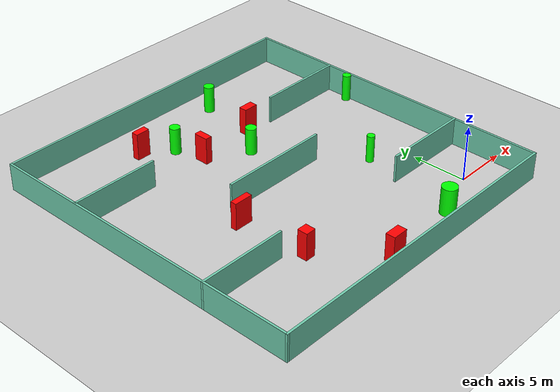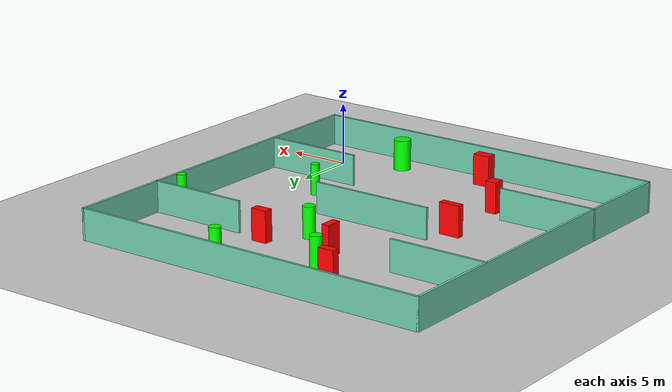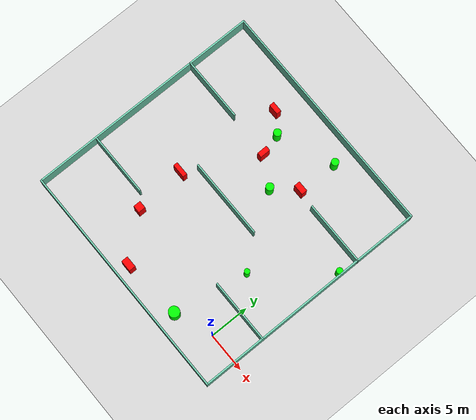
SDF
<sdf version="1.7">
 <world name="default">
  <light name="sun" type="directional">
   <pose>0 0 10 0 -0 0</pose>
   <diffuse>0.8 0.8 0.8 1</diffuse>
   <specular>0.2 0.2 0.2 1</specular>
   <attenuation>
    <range>1000</range>
    <constant>0.9</constant>
    <linear>0.01</linear>
    <quadratic>0.001</quadratic>
   </attenuation>
   <direction>-0.5 0.1 -0.9</direction>
   <spot><inner_angle>0</inner_angle><outer_angle>0</outer_angle><falloff>0</falloff></spot>
  </light>
  <model name="ground_plane">
   <static>1</static>
   <link name="link">
    <collision name="collision">
     <geometry><plane><normal>0 0 1</normal><size>100 100</size></plane></geometry>
     <surface>
      <contact><collide_bitmask>65535</collide_bitmask></contact>
      <friction><ode><mu>100</mu><mu2>50</mu2></ode></friction>
     </surface>
    </collision>
    <visual name="visual">
     <cast_shadows>0</cast_shadows>
     <geometry><plane><normal>0 0 1</normal><size>100 100</size></plane></geometry>
     <material>
      <script><uri>file://media/materials/scripts/gazebo.material</uri><name>Gazebo/Grey</name></script>
     </material>
    </visual>
   </link>
  </model>
  <gravity>0 0 -9.8</gravity>
  <magnetic_field>6e-06 2.3e-05 -4.2e-05</magnetic_field>
  <atmosphere type="adiabatic"/>
  <physics type="ode">
   <max_step_size>0.001</max_step_size>
   <real_time_factor>1</real_time_factor>
   <real_time_update_rate>1000</real_time_update_rate>
  </physics>
  <scene><ambient>0.4 0.4 0.4 1</ambient><background>0.7 0.7 0.7 1</background><shadows>1</shadows></scene>
  <spherical_coordinates>
   <surface_model>EARTH_WGS84</surface_model>
   <latitude_deg>0</latitude_deg>
   <longitude_deg>0</longitude_deg>
   <elevation>0</elevation>
   <heading_deg>0</heading_deg>
  </spherical_coordinates>
  <model name="my_base_walls">
   <link name="Wall_10">
    <collision name="Wall_10_Collision">
     <geometry><box><size>8.2 0.2 2.5</size></box></geometry>
     <pose>0 0 1.25 0 -0 0</pose>
    </collision>
    <visual name="Wall_10_Visual">
     <pose>0 0 1.25 0 -0 0</pose>
     <geometry><box><size>8.2 0.2 2.5</size></box></geometry>
     <material>
      <script><uri>file://media/materials/scripts/gazebo.material</uri><name>Gazebo/Grey</name></script>
      <ambient>0.435294 0.796078 0.67451 1</ambient>
     </material>
     <meta><layer>0</layer></meta>
    </visual>
    <pose>-11 -7 0 0 -0 0</pose>
   </link>
   <link name="Wall_12">
    <collision name="Wall_12_Collision">
     <geometry><box><size>8.2 0.2 2.5</size></box></geometry>
     <pose>0 0 1.25 0 -0 0</pose>
    </collision>
    <visual name="Wall_12_Visual">
     <pose>0 0 1.25 0 -0 0</pose>
     <geometry><box><size>8.2 0.2 2.5</size></box></geometry>
     <material>
      <script><uri>file://media/materials/scripts/gazebo.material</uri><name>Gazebo/Grey</name></script>
      <ambient>0.435294 0.796078 0.67451 1</ambient>
     </material>
     <meta><layer>0</layer></meta>
    </visual>
    <pose>-11 7 0 0 -0 0</pose>
   </link>
   <link name="Wall_14">
    <collision name="Wall_14_Collision">
     <geometry><box><size>8.2 0.2 2.5</size></box></geometry>
     <pose>0 0 1.25 0 -0 0</pose>
    </collision>
    <visual name="Wall_14_Visual">
     <pose>0 0 1.25 0 -0 0</pose>
     <geometry><box><size>8.2 0.2 2.5</size></box></geometry>
     <material>
      <script><uri>file://media/materials/scripts/gazebo.material</uri><name>Gazebo/Grey</name></script>
      <ambient>0.435294 0.796078 0.67451 1</ambient>
     </material>
     <meta><layer>0</layer></meta>
    </visual>
    <pose>11 7 0 0 -0 3.14159</pose>
   </link>
   <link name="Wall_16">
    <collision name="Wall_16_Collision">
     <geometry><box><size>10.2 0.2 2.5</size></box></geometry>
     <pose>0 0 1.25 0 -0 0</pose>
    </collision>
    <visual name="Wall_16_Visual">
     <pose>0 0 1.25 0 -0 0</pose>
     <geometry><box><size>10.2 0.2 2.5</size></box></geometry>
     <material>
      <script><uri>file://media/materials/scripts/gazebo.material</uri><name>Gazebo/Grey</name></script>
      <ambient>0.435294 0.796078 0.67451 1</ambient>
     </material>
     <meta><layer>0</layer></meta>
    </visual>
    <pose>0 0 0 0 -0 3.14159</pose>
   </link>
   <link name="Wall_2">
    <collision name="Wall_2_Collision">
     <geometry><box><size>30.2 0.2 2.5</size></box></geometry>
     <pose>0 0 1.25 0 -0 0</pose>
    </collision>
    <visual name="Wall_2_Visual">
     <pose>0 0 1.25 0 -0 0</pose>
     <geometry><box><size>30.2 0.2 2.5</size></box></geometry>
     <material>
      <script><uri>file://media/materials/scripts/gazebo.material</uri><name>Gazebo/Grey</name></script>
      <ambient>0.435294 0.796078 0.67451 1</ambient>
     </material>
     <meta><layer>0</layer></meta>
    </visual>
    <pose>0 -15 0 0 -0 3.14159</pose>
   </link>
   <link name="Wall_3">
    <collision name="Wall_3_Collision">
     <geometry><box><size>30.2 0.2 2.5</size></box></geometry>
     <pose>0 0 1.25 0 -0 0</pose>
    </collision>
    <visual name="Wall_3_Visual">
     <pose>0 0 1.25 0 -0 0</pose>
     <geometry><box><size>30.2 0.2 2.5</size></box></geometry>
     <material>
      <script><uri>file://media/materials/scripts/gazebo.material</uri><name>Gazebo/Grey</name></script>
      <ambient>0.435294 0.796078 0.67451 1</ambient>
     </material>
     <meta><layer>0</layer></meta>
    </visual>
    <pose>-15 0 0 0 -0 1.5708</pose>
   </link>
   <link name="Wall_4">
    <collision name="Wall_4_Collision">
     <geometry><box><size>30.2 0.2 2.5</size></box></geometry>
     <pose>0 0 1.25 0 -0 0</pose>
    </collision>
    <visual name="Wall_4_Visual">
     <pose>0 0 1.25 0 -0 0</pose>
     <geometry><box><size>30.2 0.2 2.5</size></box></geometry>
     <material>
      <script><uri>file://media/materials/scripts/gazebo.material</uri><name>Gazebo/Grey</name></script>
      <ambient>0.435294 0.796078 0.67451 1</ambient>
     </material>
     <meta><layer>0</layer></meta>
    </visual>
    <pose>0 15 0 0 -0 0</pose>
   </link>
   <link name="Wall_6">
    <collision name="Wall_6_Collision">
     <geometry><box><size>30.2 0.2 2.5</size></box></geometry>
     <pose>0 0 1.25 0 -0 0</pose>
    </collision>
    <visual name="Wall_6_Visual">
     <pose>0 0 1.25 0 -0 0</pose>
     <geometry><box><size>30.2 0.2 2.5</size></box></geometry>
     <material>
      <script><uri>file://media/materials/scripts/gazebo.material</uri><name>Gazebo/Grey</name></script>
      <ambient>0.435294 0.796078 0.67451 1</ambient>
     </material>
     <meta><layer>0</layer></meta>
    </visual>
    <pose>15 0 0 0 -0 1.5708</pose>
   </link>
   <link name="Wall_8">
    <collision name="Wall_8_Collision">
     <geometry><box><size>8.2 0.2 2.5</size></box></geometry>
     <pose>0 0 1.25 0 -0 0</pose>
    </collision>
    <visual name="Wall_8_Visual">
     <pose>0 0 1.25 0 -0 0</pose>
     <geometry><box><size>8.2 0.2 2.5</size></box></geometry>
     <material>
      <script><uri>file://media/materials/scripts/gazebo.material</uri><name>Gazebo/Grey</name></script>
      <ambient>0.435294 0.796078 0.67451 1</ambient>
     </material>
     <meta><layer>0</layer></meta>
    </visual>
    <pose>11 -7 0 0 -0 3.14159</pose>
   </link>
   <static>1</static>
   <pose>-11 11 0 0 -0 0</pose>
  </model>
  <model name="cylinder1">
   <static>1</static>
   <link name="link">
    <inertial>
     <mass>1</mass>
     <inertia><ixx>0.5</ixx><ixy>0</ixy><ixz>0</ixz><iyy>0.5</iyy><iyz>0</iyz><izz>1</izz></inertia>
    </inertial>
    <collision name="collision">
     <geometry><cylinder><radius>0.3811608635186579</radius><length>2.5</length></cylinder></geometry>
    </collision>
    <visual name="visual">
     <geometry><cylinder><radius>0.3811608635186579</radius><length>2.5</length></cylinder></geometry>
     <material>
      <ambient>0 1 0 1</ambient>
      <diffuse>0 1 0 1</diffuse>
      <specular>0.1 0.1 0.1 1</specular>
      <emissive>0 0 0 0</emissive>
     </material>
    </visual>
   </link>
   <pose>3.6194057923205776 15.639685625236538 1.25 0 0 0</pose>
  </model>
  <model name="cylinder2">
   <static>1</static>
   <link name="link">
    <inertial>
     <mass>1</mass>
     <inertia><ixx>0.5</ixx><ixy>0</ixy><ixz>0</ixz><iyy>0.5</iyy><iyz>0</iyz><izz>1</izz></inertia>
    </inertial>
    <collision name="collision">
     <geometry><cylinder><radius>0.46279526559393147</radius><length>2.5</length></cylinder></geometry>
    </collision>
    <visual name="visual">
     <geometry><cylinder><radius>0.46279526559393147</radius><length>2.5</length></cylinder></geometry>
     <material>
      <ambient>0 1 0 1</ambient>
      <diffuse>0 1 0 1</diffuse>
      <specular>0.1 0.1 0.1 1</specular>
      <emissive>0 0 0 0</emissive>
     </material>
    </visual>
   </link>
   <pose>-6.320180080936369 23.378867488034246 1.25 0 0 0</pose>
  </model>
  <model name="cylinder3">
   <static>1</static>
   <link name="link">
    <inertial>
     <mass>1</mass>
     <inertia><ixx>0.5</ixx><ixy>0</ixy><ixz>0</ixz><iyy>0.5</iyy><iyz>0</iyz><izz>1</izz></inertia>
    </inertial>
    <collision name="collision">
     <geometry><cylinder><radius>0.6869386106272591</radius><length>2.5</length></cylinder></geometry>
    </collision>
    <visual name="visual">
     <geometry><cylinder><radius>0.6869386106272591</radius><length>2.5</length></cylinder></geometry>
     <material>
      <ambient>0 1 0 1</ambient>
      <diffuse>0 1 0 1</diffuse>
      <specular>0.1 0.1 0.1 1</specular>
      <emissive>0 0 0 0</emissive>
     </material>
    </visual>
   </link>
   <pose>-4.636175004913104 -1.7599085697837853 1.25 0 0 0</pose>
  </model>
  <model name="cylinder4">
   <static>1</static>
   <link name="link">
    <inertial>
     <mass>1</mass>
     <inertia><ixx>0.5</ixx><ixy>0</ixy><ixz>0</ixz><iyy>0.5</iyy><iyz>0</iyz><izz>1</izz></inertia>
    </inertial>
    <collision name="collision">
     <geometry><cylinder><radius>0.34476868360878576</radius><length>2.5</length></cylinder></geometry>
    </collision>
    <visual name="visual">
     <geometry><cylinder><radius>0.34476868360878576</radius><length>2.5</length></cylinder></geometry>
     <material>
      <ambient>0 1 0 1</ambient>
      <diffuse>0 1 0 1</diffuse>
      <specular>0.1 0.1 0.1 1</specular>
      <emissive>0 0 0 0</emissive>
     </material>
    </visual>
   </link>
   <pose>-2.9666167628371696 7.5086065634544426 1.25 0 0 0</pose>
  </model>
  <model name="cylinder5">
   <static>1</static>
   <link name="link">
    <inertial>
     <mass>1</mass>
     <inertia><ixx>0.5</ixx><ixy>0</ixy><ixz>0</ixz><iyy>0.5</iyy><iyz>0</iyz><izz>1</izz></inertia>
    </inertial>
    <collision name="collision">
     <geometry><cylinder><radius>0.4941132775165975</radius><length>2.5</length></cylinder></geometry>
    </collision>
    <visual name="visual">
     <geometry><cylinder><radius>0.4941132775165975</radius><length>2.5</length></cylinder></geometry>
     <material>
      <ambient>0 1 0 1</ambient>
      <diffuse>0 1 0 1</diffuse>
      <specular>0.1 0.1 0.1 1</specular>
      <emissive>0 0 0 0</emissive>
     </material>
    </visual>
   </link>
   <pose>-8.850625881445584 15.744963744537369 1.25 0 0 0</pose>
  </model>
  <model name="cylinder6">
   <static>1</static>
   <link name="link">
    <inertial>
     <mass>1</mass>
     <inertia><ixx>0.5</ixx><ixy>0</ixy><ixz>0</ixz><iyy>0.5</iyy><iyz>0</iyz><izz>1</izz></inertia>
    </inertial>
    <collision name="collision">
     <geometry><cylinder><radius>0.4752789039277914</radius><length>2.5</length></cylinder></geometry>
    </collision>
    <visual name="visual">
     <geometry><cylinder><radius>0.4752789039277914</radius><length>2.5</length></cylinder></geometry>
     <material>
      <ambient>0 1 0 1</ambient>
      <diffuse>0 1 0 1</diffuse>
      <specular>0.1 0.1 0.1 1</specular>
      <emissive>0 0 0 0</emissive>
     </material>
    </visual>
   </link>
   <pose>-13.194480974341952 20.495669012431712 1.25 0 0 0</pose>
  </model>
  <model name="box1">
   <static>1</static>
   <link name="link">
    <inertial>
     <mass>1</mass>
     <inertia><ixx>0.083</ixx><ixy>0</ixy><ixz>0</ixz><iyy>0.083</iyy><iyz>0</iyz><izz>0.083</izz></inertia>
    </inertial>
    <collision name="collision">
     <geometry><box><size>1.7459346909170526 0.5548061035465991 2.5</size></box></geometry>
    </collision>
    <visual name="visual">
     <geometry><box><size>1.7459346909170526 0.5548061035465991 2.5</size></box></geometry>
     <material>
      <ambient>1 0 0 1</ambient>
      <diffuse>1 0 0 1</diffuse>
      <specular>0.1 0.1 0.1 1</specular>
      <emissive>0 0 0 0</emissive>
     </material>
    </visual>
    <sensor name="my_contact" type="contact">
     <contact><collision>box_collision</collision><topic>__default_topic__</topic></contact>
    </sensor>
   </link>
   <pose>-16.900207304955185 9.08132515111068 1.25 0 0 0</pose>
  </model>
  <model name="box2">
   <static>1</static>
   <link name="link">
    <inertial>
     <mass>1</mass>
     <inertia><ixx>0.083</ixx><ixy>0</ixy><ixz>0</ixz><iyy>0.083</iyy><iyz>0</iyz><izz>0.083</izz></inertia>
    </inertial>
    <collision name="collision">
     <geometry><box><size>1.3244642362985002 0.62297502325026 2.5</size></box></geometry>
    </collision>
    <visual name="visual">
     <geometry><box><size>1.3244642362985002 0.62297502325026 2.5</size></box></geometry>
     <material>
      <ambient>1 0 0 1</ambient>
      <diffuse>1 0 0 1</diffuse>
      <specular>0.1 0.1 0.1 1</specular>
      <emissive>0 0 0 0</emissive>
     </material>
    </visual>
    <sensor name="my_contact" type="contact">
     <contact><collision>box_collision</collision><topic>__default_topic__</topic></contact>
    </sensor>
   </link>
   <pose>-15.574878812859188 22.154353160501977 1.25 0 0 0</pose>
  </model>
  <model name="box3">
   <static>1</static>
   <link name="link">
    <inertial>
     <mass>1</mass>
     <inertia><ixx>0.083</ixx><ixy>0</ixy><ixz>0</ixz><iyy>0.083</iyy><iyz>0</iyz><izz>0.083</izz></inertia>
    </inertial>
    <collision name="collision">
     <geometry><box><size>0.9441909074137056 0.9376379250831464 2.5</size></box></geometry>
    </collision>
    <visual name="visual">
     <geometry><box><size>0.9441909074137056 0.9376379250831464 2.5</size></box></geometry>
     <material>
      <ambient>1 0 0 1</ambient>
      <diffuse>1 0 0 1</diffuse>
      <specular>0.1 0.1 0.1 1</specular>
      <emissive>0 0 0 0</emissive>
     </material>
    </visual>
    <sensor name="my_contact" type="contact">
     <contact><collision>box_collision</collision><topic>__default_topic__</topic></contact>
    </sensor>
   </link>
   <pose>-16.473803054392903 2.749732181708957 1.25 0 0 0</pose>
  </model>
  <model name="box4">
   <static>1</static>
   <link name="link">
    <inertial>
     <mass>1</mass>
     <inertia><ixx>0.083</ixx><ixy>0</ixy><ixz>0</ixz><iyy>0.083</iyy><iyz>0</iyz><izz>0.083</izz></inertia>
    </inertial>
    <collision name="collision">
     <geometry><box><size>1.4366314462764658 0.8510559550817397 2.5</size></box></geometry>
    </collision>
    <visual name="visual">
     <geometry><box><size>1.4366314462764658 0.8510559550817397 2.5</size></box></geometry>
     <material>
      <ambient>1 0 0 1</ambient>
      <diffuse>1 0 0 1</diffuse>
      <specular>0.1 0.1 0.1 1</specular>
      <emissive>0 0 0 0</emissive>
     </material>
    </visual>
    <sensor name="my_contact" type="contact">
     <contact><collision>box_collision</collision><topic>__default_topic__</topic></contact>
    </sensor>
   </link>
   <pose>-12.150554954162757 -2.3201286981140576 1.25 0 0 0</pose>
  </model>
  <model name="box5">
   <static>1</static>
   <link name="link">
    <inertial>
     <mass>1</mass>
     <inertia><ixx>0.083</ixx><ixy>0</ixy><ixz>0</ixz><iyy>0.083</iyy><iyz>0</iyz><izz>0.083</izz></inertia>
    </inertial>
    <collision name="collision">
     <geometry><box><size>1.3447112753807682 0.7369626925959646 2.5</size></box></geometry>
    </collision>
    <visual name="visual">
     <geometry><box><size>1.3447112753807682 0.7369626925959646 2.5</size></box></geometry>
     <material>
      <ambient>1 0 0 1</ambient>
      <diffuse>1 0 0 1</diffuse>
      <specular>0.1 0.1 0.1 1</specular>
      <emissive>0 0 0 0</emissive>
     </material>
    </visual>
    <sensor name="my_contact" type="contact">
     <contact><collision>box_collision</collision><topic>__default_topic__</topic></contact>
    </sensor>
   </link>
   <pose>-6.488047578157325 18.362541710898448 1.25 0 0 0</pose>
  </model>
  <model name="box6">
   <static>1</static>
   <link name="link">
    <inertial>
     <mass>1</mass>
     <inertia><ixx>0.083</ixx><ixy>0</ixy><ixz>0</ixz><iyy>0.083</iyy><iyz>0</iyz><izz>0.083</izz></inertia>
    </inertial>
    <collision name="collision">
     <geometry><box><size>0.6289184266530985 1.3254893650729878 2.5</size></box></geometry>
    </collision>
    <visual name="visual">
     <geometry><box><size>0.6289184266530985 1.3254893650729878 2.5</size></box></geometry>
     <material>
      <ambient>1 0 0 1</ambient>
      <diffuse>1 0 0 1</diffuse>
      <specular>0.1 0.1 0.1 1</specular>
      <emissive>0 0 0 0</emissive>
     </material>
    </visual>
    <sensor name="my_contact" type="contact">
     <contact><collision>box_collision</collision><topic>__default_topic__</topic></contact>
    </sensor>
   </link>
   <pose>-12.45528683107628 17.820018846334015 1.25 0 0 0</pose>
  </model>
 </world>
</sdf>
